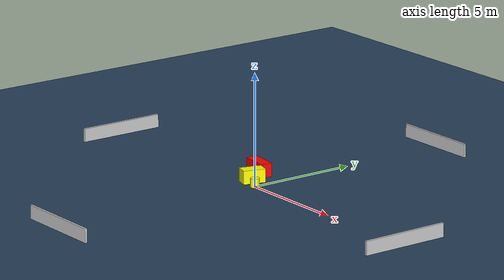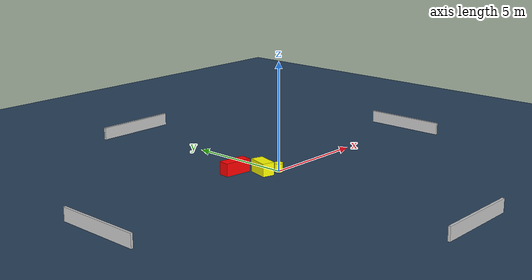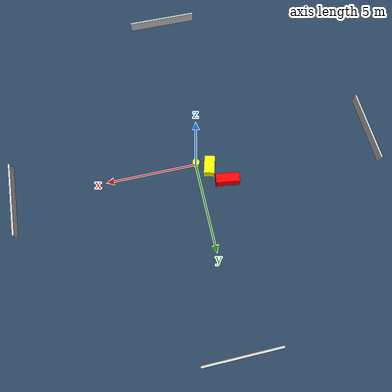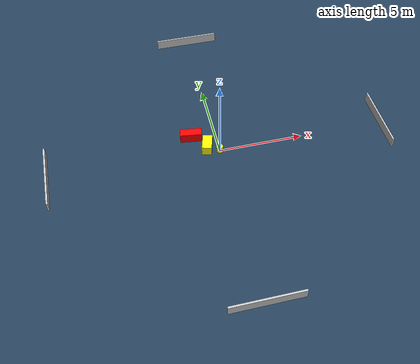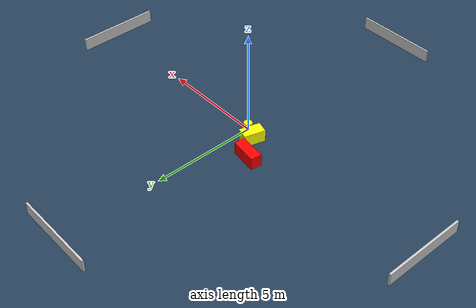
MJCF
<?xml version="1.0" ?>
<mujoco model="generated_environment">
  <option timestep="0.01" integrator="RK4" cone="elliptic"/>
  <default>
    <geom density="1"/>
  </default>
  <asset>
    <texture builtin="gradient" height="3072" name="skybox" rgb1="0.3 0.5 0.7" rgb2="0 0 0" type="skybox" width="512"/>
    <texture builtin="checker" height="300" name="groundplane" rgb1="0.2 0.3 0.4" rgb2="0.1 0.2 0.3" type="2d" width="300"/>
    <material name="groundplane" reflectance="0.2" texrepeat="5 5" texture="groundplane"/>
  </asset>
  <worldbody>
    <light dir="0 0 -1" directional="true" pos="0 0 1.5"/>
    <geom condim="3" friction="0.5 0.005 0.001" material="groundplane" name="floor" pos="0 0 0" size="0 0 0.05" type="plane"/>
    <body name="walls">
      <geom name="wall_1" condim="4" pos="-10.0 0.0 0.3" rgba="0.800000011920929 0.800000011920929 0.800000011920929 1.0" size="0.05 2.0 0.3" type="box"/>
      <geom name="wall_2" condim="4" pos="10.0 0.0 0.3" rgba="0.800000011920929 0.800000011920929 0.800000011920929 1.0" size="0.05 2.0 0.3" type="box"/>
      <geom name="wall_3" condim="4" pos="0.0 -10.0 0.3" rgba="0.800000011920929 0.800000011920929 0.800000011920929 1.0" size="2.0 0.05 0.3" type="box"/>
      <geom name="wall_4" condim="4" pos="0.0 10.0 0.3" rgba="0.800000011920929 0.800000011920929 0.800000011920929 1.0" size="2.0 0.05 0.3" type="box"/>
    </body>
    <body name="robot">
      <joint name="joint_x" type="slide" pos="0 0 0" axis="1 0 0"/>
      <joint name="joint_y" type="slide" pos="0 0 0" axis="0 1 0"/>
      <geom name="robot" type="cylinder" pos="0.0 0.0 0.2" size="0.2 0.2 0.0" mass="5.0" friction="1.0 0.005 0.0001" condim="4" rgba="1.0 1.0 0.0 1.0"/>
    </body>
    <body name="obstacle_1_movable">
      <geom name="obstacle_1_movable" condim="4" pos="-0.6703268898173431 0.3623177130532837 0.3" euler="0 0 164.21735296916773" friction="0.0 0.005 0.001" rgba="1.0 1.0 0.0 1.0" size="0.2860458603737671 0.5042450257725133 0.3" type="box" mass="0.1"/>
      <joint type="free"/>
    </body>
    <body name="obstacle_2_static">
      <geom name="obstacle_2_static" condim="4" pos="-1.4532291163472488 1.3187476155747015 0.3" euler="0 0 262.4647419250707" friction="0.0 0.005 0.001" rgba="1.0 0.0 0.0 1.0" size="0.2595771532371771 0.6440805232353313 0.3" type="box"/>
    </body>
  </worldbody>
  <actuator>
    <motor name="actuator_x" joint="joint_x" gear="1" ctrlrange="-1 1"/>
    <motor name="actuator_y" joint="joint_y" gear="1" ctrlrange="-1 1"/>
  </actuator>
</mujoco>
